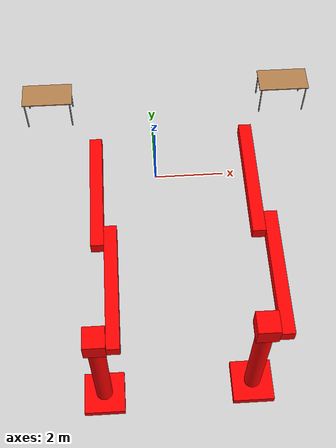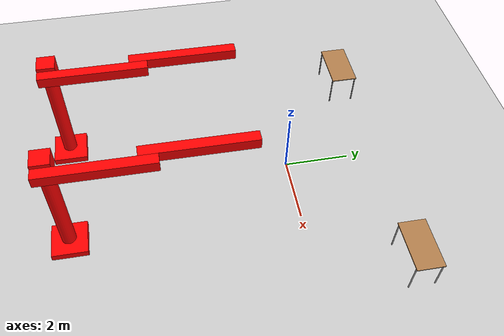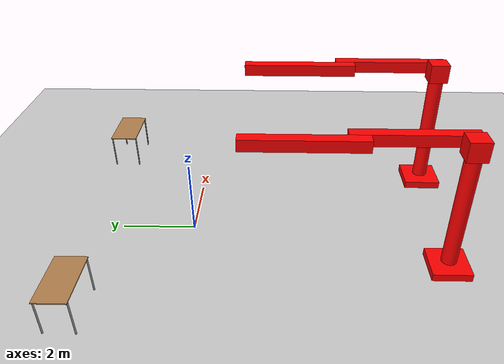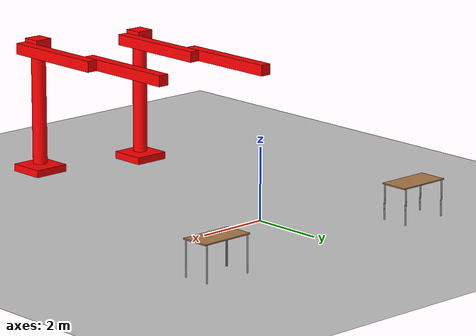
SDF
<sdf version="1.6">
 <world name="default">
  <model name="ground_plane">
   <static>1</static>
   <link name="link">
    <collision name="collision">
     <geometry><plane><normal>0 0 1</normal><size>100 100</size></plane></geometry>
     <surface><friction><ode><mu>100</mu><mu2>50</mu2></ode></friction></surface>
    </collision>
    <visual name="visual">
     <cast_shadows>0</cast_shadows>
     <geometry><plane><normal>0 0 1</normal><size>100 100</size></plane></geometry>
     <material>
      <script><uri>file://media/materials/scripts/gazebo.material</uri><name>Gazebo/Grey</name></script>
     </material>
    </visual>
   </link>
  </model>
  <model name="3dofarm">
   <link name="link_0">
    <pose>-0.27214 0.347509 -1.9245 0 -0 0</pose>
    <inertial>
     <mass>1</mass>
     <inertia>
      <ixx>0.166667</ixx>
      <ixy>0</ixy>
      <ixz>0</ixz>
      <iyy>0.166667</iyy>
      <iyz>0</iyz>
      <izz>0.166667</izz>
     </inertia>
    </inertial>
    <visual name="visual">
     <geometry><box><size>1 1 0.2</size></box></geometry>
     <material>
      <lighting>1</lighting>
      <script><uri>file://media/materials/scripts/gazebo.material</uri><name>Gazebo/Grey</name></script>
      <shader type="pixel"><normal_map>__default__</normal_map></shader>
      <ambient>1 0 0 1</ambient>
      <diffuse>0.7 0.7 0.7 1</diffuse>
      <specular>0.01 0.01 0.01 1</specular>
      <emissive>0 0 0 1</emissive>
     </material>
    </visual>
    <collision name="collision">
     <geometry><box><size>1 1 0.2</size></box></geometry>
     <surface>
      <friction>
       <ode><mu>1</mu><mu2>1</mu2><fdir1>0 0 0</fdir1><slip1>0</slip1><slip2>0</slip2></ode>
       <torsional>
        <coefficient>1</coefficient>
        <patch_radius>0</patch_radius>
        <surface_radius>0</surface_radius>
        <use_patch_radius>1</use_patch_radius>
        <ode><slip>0</slip></ode>
       </torsional>
      </friction>
      <bounce><restitution_coefficient>0</restitution_coefficient><threshold>1e+06</threshold></bounce>
      <contact>
       <collide_without_contact>0</collide_without_contact>
       <collide_without_contact_bitmask>1</collide_without_contact_bitmask>
       <collide_bitmask>1</collide_bitmask>
       <ode>
        <soft_cfm>0</soft_cfm>
        <soft_erp>0.2</soft_erp>
        <kp>1e+13</kp>
        <kd>1</kd>
        <max_vel>0.01</max_vel>
        <min_depth>0</min_depth>
       </ode>
       <bullet>
        <split_impulse>1</split_impulse>
        <split_impulse_penetration_threshold>-0.01</split_impulse_penetration_threshold>
        <soft_cfm>0</soft_cfm>
        <soft_erp>0.2</soft_erp>
        <kp>1e+13</kp>
        <kd>1</kd>
       </bullet>
      </contact>
     </surface>
    </collision>
   </link>
   <link name="link_1">
    <pose>-0.272137 0.347508 -0.2845 0 -0 0</pose>
    <inertial>
     <mass>1</mass>
     <inertia><ixx>0.145833</ixx><ixy>0</ixy><ixz>0</ixz><iyy>0.145833</iyy><iyz>0</iyz><izz>0.125</izz></inertia>
    </inertial>
    <visual name="visual">
     <geometry><cylinder><radius>0.2</radius><length>3</length></cylinder></geometry>
     <material>
      <lighting>1</lighting>
      <script><uri>file://media/materials/scripts/gazebo.material</uri><name>Gazebo/Grey</name></script>
      <shader type="pixel"><normal_map>__default__</normal_map></shader>
      <ambient>1 0 0 1</ambient>
      <diffuse>0.7 0.7 0.7 1</diffuse>
      <specular>0.01 0.01 0.01 1</specular>
      <emissive>0 0 0 1</emissive>
     </material>
    </visual>
    <collision name="collision">
     <geometry><cylinder><radius>0.2</radius><length>3</length></cylinder></geometry>
     <surface>
      <friction>
       <ode><mu>1</mu><mu2>1</mu2><fdir1>0 0 0</fdir1><slip1>0</slip1><slip2>0</slip2></ode>
       <torsional>
        <coefficient>1</coefficient>
        <patch_radius>0</patch_radius>
        <surface_radius>0</surface_radius>
        <use_patch_radius>1</use_patch_radius>
        <ode><slip>0</slip></ode>
       </torsional>
      </friction>
      <bounce><restitution_coefficient>0</restitution_coefficient><threshold>1e+06</threshold></bounce>
      <contact>
       <collide_without_contact>0</collide_without_contact>
       <collide_without_contact_bitmask>1</collide_without_contact_bitmask>
       <collide_bitmask>1</collide_bitmask>
       <ode>
        <soft_cfm>0</soft_cfm>
        <soft_erp>0.2</soft_erp>
        <kp>1e+13</kp>
        <kd>1</kd>
        <max_vel>0.01</max_vel>
        <min_depth>0</min_depth>
       </ode>
       <bullet>
        <split_impulse>1</split_impulse>
        <split_impulse_penetration_threshold>-0.01</split_impulse_penetration_threshold>
        <soft_cfm>0</soft_cfm>
        <soft_erp>0.2</soft_erp>
        <kp>1e+13</kp>
        <kd>1</kd>
       </bullet>
      </contact>
     </surface>
    </collision>
   </link>
   <link name="link_2">
    <pose>-0.272137 0.347508 1.4655 0 -0 0</pose>
    <inertial>
     <mass>1</mass>
     <inertia>
      <ixx>0.166667</ixx>
      <ixy>0</ixy>
      <ixz>0</ixz>
      <iyy>0.166667</iyy>
      <iyz>0</iyz>
      <izz>0.166667</izz>
     </inertia>
    </inertial>
    <visual name="visual">
     <geometry><box><size>0.5 0.5 0.5</size></box></geometry>
     <material>
      <lighting>1</lighting>
      <script><uri>file://media/materials/scripts/gazebo.material</uri><name>Gazebo/Grey</name></script>
      <shader type="pixel"><normal_map>__default__</normal_map></shader>
      <ambient>1 0 0 1</ambient>
      <diffuse>0.7 0.7 0.7 1</diffuse>
      <specular>0.01 0.01 0.01 1</specular>
      <emissive>0 0 0 1</emissive>
     </material>
    </visual>
    <collision name="collision">
     <geometry><box><size>0.5 0.5 0.5</size></box></geometry>
     <surface>
      <friction>
       <ode><mu>1</mu><mu2>1</mu2><fdir1>0 0 0</fdir1><slip1>0</slip1><slip2>0</slip2></ode>
       <torsional>
        <coefficient>1</coefficient>
        <patch_radius>0</patch_radius>
        <surface_radius>0</surface_radius>
        <use_patch_radius>1</use_patch_radius>
        <ode><slip>0</slip></ode>
       </torsional>
      </friction>
      <bounce><restitution_coefficient>0</restitution_coefficient><threshold>1e+06</threshold></bounce>
      <contact>
       <collide_without_contact>0</collide_without_contact>
       <collide_without_contact_bitmask>1</collide_without_contact_bitmask>
       <collide_bitmask>1</collide_bitmask>
       <ode>
        <soft_cfm>0</soft_cfm>
        <soft_erp>0.2</soft_erp>
        <kp>1e+13</kp>
        <kd>1</kd>
        <max_vel>0.01</max_vel>
        <min_depth>0</min_depth>
       </ode>
       <bullet>
        <split_impulse>1</split_impulse>
        <split_impulse_penetration_threshold>-0.01</split_impulse_penetration_threshold>
        <soft_cfm>0</soft_cfm>
        <soft_erp>0.2</soft_erp>
        <kp>1e+13</kp>
        <kd>1</kd>
       </bullet>
      </contact>
     </surface>
    </collision>
   </link>
   <link name="link_3">
    <pose>0.127862 0.347503 1.4655 0 -0 0</pose>
    <inertial>
     <mass>1</mass>
     <inertia>
      <ixx>0.166667</ixx>
      <ixy>0</ixy>
      <ixz>0</ixz>
      <iyy>0.166667</iyy>
      <iyz>0</iyz>
      <izz>0.166667</izz>
     </inertia>
    </inertial>
    <visual name="visual">
     <pose>0 1.25 0 0 -0 0</pose>
     <geometry><box><size>0.3 3 0.3</size></box></geometry>
     <material>
      <lighting>1</lighting>
      <script><uri>file://media/materials/scripts/gazebo.material</uri><name>Gazebo/Grey</name></script>
      <shader type="pixel"><normal_map>__default__</normal_map></shader>
      <ambient>1 0 0 1</ambient>
      <diffuse>0.7 0.7 0.7 1</diffuse>
      <specular>0.01 0.01 0.01 1</specular>
      <emissive>0 0 0 1</emissive>
     </material>
    </visual>
    <collision name="collision">
     <pose>0 1.25 0 0 -0 0</pose>
     <geometry><box><size>0.3 3 0.3</size></box></geometry>
     <surface>
      <friction>
       <ode><mu>1</mu><mu2>1</mu2><fdir1>0 0 0</fdir1><slip1>0</slip1><slip2>0</slip2></ode>
       <torsional>
        <coefficient>1</coefficient>
        <patch_radius>0</patch_radius>
        <surface_radius>0</surface_radius>
        <use_patch_radius>1</use_patch_radius>
        <ode><slip>0</slip></ode>
       </torsional>
      </friction>
      <bounce><restitution_coefficient>0</restitution_coefficient><threshold>1e+06</threshold></bounce>
      <contact>
       <collide_without_contact>0</collide_without_contact>
       <collide_without_contact_bitmask>1</collide_without_contact_bitmask>
       <collide_bitmask>1</collide_bitmask>
       <ode>
        <soft_cfm>0</soft_cfm>
        <soft_erp>0.2</soft_erp>
        <kp>1e+13</kp>
        <kd>1</kd>
        <max_vel>0.01</max_vel>
        <min_depth>0</min_depth>
       </ode>
       <bullet>
        <split_impulse>1</split_impulse>
        <split_impulse_penetration_threshold>-0.01</split_impulse_penetration_threshold>
        <soft_cfm>0</soft_cfm>
        <soft_erp>0.2</soft_erp>
        <kp>1e+13</kp>
        <kd>1</kd>
       </bullet>
      </contact>
     </surface>
    </collision>
   </link>
   <link name="link_3_clone">
    <pose>-0.172137 2.84751 1.4655 0 -0 0</pose>
    <inertial>
     <mass>1</mass>
     <inertia>
      <ixx>0.166667</ixx>
      <ixy>0</ixy>
      <ixz>0</ixz>
      <iyy>0.166667</iyy>
      <iyz>0</iyz>
      <izz>0.166667</izz>
     </inertia>
    </inertial>
    <visual name="visual">
     <pose>0 1.25 0 0 -0 0</pose>
     <geometry><box><size>0.3 3 0.3</size></box></geometry>
     <material>
      <lighting>1</lighting>
      <script><uri>file://media/materials/scripts/gazebo.material</uri><name>Gazebo/Grey</name></script>
      <shader type="pixel"><normal_map>__default__</normal_map></shader>
      <ambient>1 0 0 1</ambient>
      <diffuse>0.7 0.7 0.7 1</diffuse>
      <specular>0.01 0.01 0.01 1</specular>
      <emissive>0 0 0 1</emissive>
     </material>
    </visual>
    <collision name="collision">
     <pose>0 1.25 0 0 -0 0</pose>
     <geometry><box><size>0.3 3 0.3</size></box></geometry>
     <surface>
      <friction>
       <ode><mu>1</mu><mu2>1</mu2><fdir1>0 0 0</fdir1><slip1>0</slip1><slip2>0</slip2></ode>
       <torsional>
        <coefficient>1</coefficient>
        <patch_radius>0</patch_radius>
        <surface_radius>0</surface_radius>
        <use_patch_radius>1</use_patch_radius>
        <ode><slip>0</slip></ode>
       </torsional>
      </friction>
      <bounce><restitution_coefficient>0</restitution_coefficient><threshold>1e+06</threshold></bounce>
      <contact>
       <collide_without_contact>0</collide_without_contact>
       <collide_without_contact_bitmask>1</collide_without_contact_bitmask>
       <collide_bitmask>1</collide_bitmask>
       <ode>
        <soft_cfm>0</soft_cfm>
        <soft_erp>0.2</soft_erp>
        <kp>1e+13</kp>
        <kd>1</kd>
        <max_vel>0.01</max_vel>
        <min_depth>0</min_depth>
       </ode>
       <bullet>
        <split_impulse>1</split_impulse>
        <split_impulse_penetration_threshold>-0.01</split_impulse_penetration_threshold>
        <soft_cfm>0</soft_cfm>
        <soft_erp>0.2</soft_erp>
        <kp>1e+13</kp>
        <kd>1</kd>
       </bullet>
      </contact>
     </surface>
    </collision>
   </link>
   <joint name="link_0_JOINT_0" type="revolute">
    <parent>link_0</parent>
    <child>link_1</child>
    <pose>0 0 0 0 -0.01 0</pose>
    <axis>
     <xyz>0 0 1</xyz>
     <use_parent_model_frame>0</use_parent_model_frame>
     <limit>
      <lower>-1.79769e+308</lower>
      <upper>1.79769e+308</upper>
      <effort>-1</effort>
      <velocity>-1</velocity>
     </limit>
     <dynamics>
      <spring_reference>0</spring_reference>
      <spring_stiffness>0</spring_stiffness>
      <damping>0</damping>
      <friction>0</friction>
     </dynamics>
    </axis>
    <physics>
     <ode><limit><cfm>0</cfm><erp>0.2</erp></limit><suspension><cfm>0</cfm><erp>0.2</erp></suspension></ode>
    </physics>
   </joint>
   <joint name="link_1_JOINT_1" type="fixed">
    <parent>link_1</parent>
    <child>link_2</child>
    <physics>
     <ode><limit><cfm>0</cfm><erp>0.2</erp></limit><suspension><cfm>0</cfm><erp>0.2</erp></suspension></ode>
    </physics>
   </joint>
   <joint name="link_2_JOINT_2" type="revolute">
    <parent>link_2</parent>
    <child>link_3</child>
    <axis>
     <xyz>1 0 0</xyz>
     <use_parent_model_frame>0</use_parent_model_frame>
     <limit>
      <lower>-1.79769e+308</lower>
      <upper>1.79769e+308</upper>
      <effort>-1</effort>
      <velocity>-1</velocity>
     </limit>
     <dynamics>
      <spring_reference>0</spring_reference>
      <spring_stiffness>0</spring_stiffness>
      <damping>0</damping>
      <friction>0</friction>
     </dynamics>
    </axis>
    <physics>
     <ode><limit><cfm>0</cfm><erp>0.2</erp></limit><suspension><cfm>0</cfm><erp>0.2</erp></suspension></ode>
    </physics>
   </joint>
   <joint name="link_3_JOINT_6" type="revolute">
    <parent>link_3</parent>
    <child>link_3_clone</child>
    <axis>
     <xyz>1 0 0</xyz>
     <use_parent_model_frame>0</use_parent_model_frame>
     <limit>
      <lower>-1.79769e+308</lower>
      <upper>1.79769e+308</upper>
      <effort>-1</effort>
      <velocity>-1</velocity>
     </limit>
     <dynamics>
      <spring_reference>0</spring_reference>
      <spring_stiffness>0</spring_stiffness>
      <damping>0</damping>
      <friction>0</friction>
     </dynamics>
    </axis>
    <physics>
     <ode><limit><cfm>0</cfm><erp>0.2</erp></limit><suspension><cfm>0</cfm><erp>0.2</erp></suspension></ode>
    </physics>
   </joint>
   <static>1</static>
   <pose>-1.3357 -6.99832 2.13578 0 -0 0</pose>
  </model>
  <model name="3dofarm_0">
   <link name="link_0">
    <pose>-0.27214 0.347509 -1.9245 0 -0 0</pose>
    <inertial>
     <mass>1</mass>
     <inertia>
      <ixx>0.166667</ixx>
      <ixy>0</ixy>
      <ixz>0</ixz>
      <iyy>0.166667</iyy>
      <iyz>0</iyz>
      <izz>0.166667</izz>
     </inertia>
    </inertial>
    <visual name="visual">
     <geometry><box><size>1 1 0.2</size></box></geometry>
     <material>
      <lighting>1</lighting>
      <script><uri>file://media/materials/scripts/gazebo.material</uri><name>Gazebo/Grey</name></script>
      <shader type="pixel"><normal_map>__default__</normal_map></shader>
      <ambient>1 0 0 1</ambient>
      <diffuse>0.7 0.7 0.7 1</diffuse>
      <specular>0.01 0.01 0.01 1</specular>
      <emissive>0 0 0 1</emissive>
     </material>
    </visual>
    <collision name="collision">
     <geometry><box><size>1 1 0.2</size></box></geometry>
     <surface>
      <friction>
       <ode><mu>1</mu><mu2>1</mu2><fdir1>0 0 0</fdir1><slip1>0</slip1><slip2>0</slip2></ode>
       <torsional>
        <coefficient>1</coefficient>
        <patch_radius>0</patch_radius>
        <surface_radius>0</surface_radius>
        <use_patch_radius>1</use_patch_radius>
        <ode><slip>0</slip></ode>
       </torsional>
      </friction>
      <bounce><restitution_coefficient>0</restitution_coefficient><threshold>1e+06</threshold></bounce>
      <contact>
       <collide_without_contact>0</collide_without_contact>
       <collide_without_contact_bitmask>1</collide_without_contact_bitmask>
       <collide_bitmask>1</collide_bitmask>
       <ode>
        <soft_cfm>0</soft_cfm>
        <soft_erp>0.2</soft_erp>
        <kp>1e+13</kp>
        <kd>1</kd>
        <max_vel>0.01</max_vel>
        <min_depth>0</min_depth>
       </ode>
       <bullet>
        <split_impulse>1</split_impulse>
        <split_impulse_penetration_threshold>-0.01</split_impulse_penetration_threshold>
        <soft_cfm>0</soft_cfm>
        <soft_erp>0.2</soft_erp>
        <kp>1e+13</kp>
        <kd>1</kd>
       </bullet>
      </contact>
     </surface>
    </collision>
   </link>
   <link name="link_1">
    <pose>-0.272137 0.347508 -0.2845 0 -0 0</pose>
    <inertial>
     <mass>1</mass>
     <inertia><ixx>0.145833</ixx><ixy>0</ixy><ixz>0</ixz><iyy>0.145833</iyy><iyz>0</iyz><izz>0.125</izz></inertia>
    </inertial>
    <visual name="visual">
     <geometry><cylinder><radius>0.2</radius><length>3</length></cylinder></geometry>
     <material>
      <lighting>1</lighting>
      <script><uri>file://media/materials/scripts/gazebo.material</uri><name>Gazebo/Grey</name></script>
      <shader type="pixel"><normal_map>__default__</normal_map></shader>
      <ambient>1 0 0 1</ambient>
      <diffuse>0.7 0.7 0.7 1</diffuse>
      <specular>0.01 0.01 0.01 1</specular>
      <emissive>0 0 0 1</emissive>
     </material>
    </visual>
    <collision name="collision">
     <geometry><cylinder><radius>0.2</radius><length>3</length></cylinder></geometry>
     <surface>
      <friction>
       <ode><mu>1</mu><mu2>1</mu2><fdir1>0 0 0</fdir1><slip1>0</slip1><slip2>0</slip2></ode>
       <torsional>
        <coefficient>1</coefficient>
        <patch_radius>0</patch_radius>
        <surface_radius>0</surface_radius>
        <use_patch_radius>1</use_patch_radius>
        <ode><slip>0</slip></ode>
       </torsional>
      </friction>
      <bounce><restitution_coefficient>0</restitution_coefficient><threshold>1e+06</threshold></bounce>
      <contact>
       <collide_without_contact>0</collide_without_contact>
       <collide_without_contact_bitmask>1</collide_without_contact_bitmask>
       <collide_bitmask>1</collide_bitmask>
       <ode>
        <soft_cfm>0</soft_cfm>
        <soft_erp>0.2</soft_erp>
        <kp>1e+13</kp>
        <kd>1</kd>
        <max_vel>0.01</max_vel>
        <min_depth>0</min_depth>
       </ode>
       <bullet>
        <split_impulse>1</split_impulse>
        <split_impulse_penetration_threshold>-0.01</split_impulse_penetration_threshold>
        <soft_cfm>0</soft_cfm>
        <soft_erp>0.2</soft_erp>
        <kp>1e+13</kp>
        <kd>1</kd>
       </bullet>
      </contact>
     </surface>
    </collision>
   </link>
   <link name="link_2">
    <pose>-0.272137 0.347508 1.4655 0 -0 0</pose>
    <inertial>
     <mass>1</mass>
     <inertia>
      <ixx>0.166667</ixx>
      <ixy>0</ixy>
      <ixz>0</ixz>
      <iyy>0.166667</iyy>
      <iyz>0</iyz>
      <izz>0.166667</izz>
     </inertia>
    </inertial>
    <visual name="visual">
     <geometry><box><size>0.5 0.5 0.5</size></box></geometry>
     <material>
      <lighting>1</lighting>
      <script><uri>file://media/materials/scripts/gazebo.material</uri><name>Gazebo/Grey</name></script>
      <shader type="pixel"><normal_map>__default__</normal_map></shader>
      <ambient>1 0 0 1</ambient>
      <diffuse>0.7 0.7 0.7 1</diffuse>
      <specular>0.01 0.01 0.01 1</specular>
      <emissive>0 0 0 1</emissive>
     </material>
    </visual>
    <collision name="collision">
     <geometry><box><size>0.5 0.5 0.5</size></box></geometry>
     <surface>
      <friction>
       <ode><mu>1</mu><mu2>1</mu2><fdir1>0 0 0</fdir1><slip1>0</slip1><slip2>0</slip2></ode>
       <torsional>
        <coefficient>1</coefficient>
        <patch_radius>0</patch_radius>
        <surface_radius>0</surface_radius>
        <use_patch_radius>1</use_patch_radius>
        <ode><slip>0</slip></ode>
       </torsional>
      </friction>
      <bounce><restitution_coefficient>0</restitution_coefficient><threshold>1e+06</threshold></bounce>
      <contact>
       <collide_without_contact>0</collide_without_contact>
       <collide_without_contact_bitmask>1</collide_without_contact_bitmask>
       <collide_bitmask>1</collide_bitmask>
       <ode>
        <soft_cfm>0</soft_cfm>
        <soft_erp>0.2</soft_erp>
        <kp>1e+13</kp>
        <kd>1</kd>
        <max_vel>0.01</max_vel>
        <min_depth>0</min_depth>
       </ode>
       <bullet>
        <split_impulse>1</split_impulse>
        <split_impulse_penetration_threshold>-0.01</split_impulse_penetration_threshold>
        <soft_cfm>0</soft_cfm>
        <soft_erp>0.2</soft_erp>
        <kp>1e+13</kp>
        <kd>1</kd>
       </bullet>
      </contact>
     </surface>
    </collision>
   </link>
   <link name="link_3">
    <pose>0.127862 0.347503 1.4655 0 -0 0</pose>
    <inertial>
     <mass>1</mass>
     <inertia>
      <ixx>0.166667</ixx>
      <ixy>0</ixy>
      <ixz>0</ixz>
      <iyy>0.166667</iyy>
      <iyz>0</iyz>
      <izz>0.166667</izz>
     </inertia>
    </inertial>
    <visual name="visual">
     <pose>0 1.25 0 0 -0 0</pose>
     <geometry><box><size>0.3 3 0.3</size></box></geometry>
     <material>
      <lighting>1</lighting>
      <script><uri>file://media/materials/scripts/gazebo.material</uri><name>Gazebo/Grey</name></script>
      <shader type="pixel"><normal_map>__default__</normal_map></shader>
      <ambient>1 0 0 1</ambient>
      <diffuse>0.7 0.7 0.7 1</diffuse>
      <specular>0.01 0.01 0.01 1</specular>
      <emissive>0 0 0 1</emissive>
     </material>
    </visual>
    <collision name="collision">
     <pose>0 1.25 0 0 -0 0</pose>
     <geometry><box><size>0.3 3 0.3</size></box></geometry>
     <surface>
      <friction>
       <ode><mu>1</mu><mu2>1</mu2><fdir1>0 0 0</fdir1><slip1>0</slip1><slip2>0</slip2></ode>
       <torsional>
        <coefficient>1</coefficient>
        <patch_radius>0</patch_radius>
        <surface_radius>0</surface_radius>
        <use_patch_radius>1</use_patch_radius>
        <ode><slip>0</slip></ode>
       </torsional>
      </friction>
      <bounce><restitution_coefficient>0</restitution_coefficient><threshold>1e+06</threshold></bounce>
      <contact>
       <collide_without_contact>0</collide_without_contact>
       <collide_without_contact_bitmask>1</collide_without_contact_bitmask>
       <collide_bitmask>1</collide_bitmask>
       <ode>
        <soft_cfm>0</soft_cfm>
        <soft_erp>0.2</soft_erp>
        <kp>1e+13</kp>
        <kd>1</kd>
        <max_vel>0.01</max_vel>
        <min_depth>0</min_depth>
       </ode>
       <bullet>
        <split_impulse>1</split_impulse>
        <split_impulse_penetration_threshold>-0.01</split_impulse_penetration_threshold>
        <soft_cfm>0</soft_cfm>
        <soft_erp>0.2</soft_erp>
        <kp>1e+13</kp>
        <kd>1</kd>
       </bullet>
      </contact>
     </surface>
    </collision>
   </link>
   <link name="link_3_clone">
    <pose>-0.172137 2.84751 1.4655 0 -0 0</pose>
    <inertial>
     <mass>1</mass>
     <inertia>
      <ixx>0.166667</ixx>
      <ixy>0</ixy>
      <ixz>0</ixz>
      <iyy>0.166667</iyy>
      <iyz>0</iyz>
      <izz>0.166667</izz>
     </inertia>
    </inertial>
    <visual name="visual">
     <pose>0 1.25 0 0 -0 0</pose>
     <geometry><box><size>0.3 3 0.3</size></box></geometry>
     <material>
      <lighting>1</lighting>
      <script><uri>file://media/materials/scripts/gazebo.material</uri><name>Gazebo/Grey</name></script>
      <shader type="pixel"><normal_map>__default__</normal_map></shader>
      <ambient>1 0 0 1</ambient>
      <diffuse>0.7 0.7 0.7 1</diffuse>
      <specular>0.01 0.01 0.01 1</specular>
      <emissive>0 0 0 1</emissive>
     </material>
    </visual>
    <collision name="collision">
     <pose>0 1.25 0 0 -0 0</pose>
     <geometry><box><size>0.3 3 0.3</size></box></geometry>
     <surface>
      <friction>
       <ode><mu>1</mu><mu2>1</mu2><fdir1>0 0 0</fdir1><slip1>0</slip1><slip2>0</slip2></ode>
       <torsional>
        <coefficient>1</coefficient>
        <patch_radius>0</patch_radius>
        <surface_radius>0</surface_radius>
        <use_patch_radius>1</use_patch_radius>
        <ode><slip>0</slip></ode>
       </torsional>
      </friction>
      <bounce><restitution_coefficient>0</restitution_coefficient><threshold>1e+06</threshold></bounce>
      <contact>
       <collide_without_contact>0</collide_without_contact>
       <collide_without_contact_bitmask>1</collide_without_contact_bitmask>
       <collide_bitmask>1</collide_bitmask>
       <ode>
        <soft_cfm>0</soft_cfm>
        <soft_erp>0.2</soft_erp>
        <kp>1e+13</kp>
        <kd>1</kd>
        <max_vel>0.01</max_vel>
        <min_depth>0</min_depth>
       </ode>
       <bullet>
        <split_impulse>1</split_impulse>
        <split_impulse_penetration_threshold>-0.01</split_impulse_penetration_threshold>
        <soft_cfm>0</soft_cfm>
        <soft_erp>0.2</soft_erp>
        <kp>1e+13</kp>
        <kd>1</kd>
       </bullet>
      </contact>
     </surface>
    </collision>
   </link>
   <joint name="link_0_JOINT_0" type="revolute">
    <parent>link_0</parent>
    <child>link_1</child>
    <pose>0 0 0 0 -0.01 0</pose>
    <axis>
     <xyz>0 0 1</xyz>
     <use_parent_model_frame>0</use_parent_model_frame>
     <limit>
      <lower>-1.79769e+308</lower>
      <upper>1.79769e+308</upper>
      <effort>-1</effort>
      <velocity>-1</velocity>
     </limit>
     <dynamics>
      <spring_reference>0</spring_reference>
      <spring_stiffness>0</spring_stiffness>
      <damping>0</damping>
      <friction>0</friction>
     </dynamics>
    </axis>
    <physics>
     <ode><limit><cfm>0</cfm><erp>0.2</erp></limit><suspension><cfm>0</cfm><erp>0.2</erp></suspension></ode>
    </physics>
   </joint>
   <joint name="link_1_JOINT_1" type="fixed">
    <parent>link_1</parent>
    <child>link_2</child>
    <physics>
     <ode><limit><cfm>0</cfm><erp>0.2</erp></limit><suspension><cfm>0</cfm><erp>0.2</erp></suspension></ode>
    </physics>
   </joint>
   <joint name="link_2_JOINT_2" type="revolute">
    <parent>link_2</parent>
    <child>link_3</child>
    <axis>
     <xyz>1 0 0</xyz>
     <use_parent_model_frame>0</use_parent_model_frame>
     <limit>
      <lower>-1.79769e+308</lower>
      <upper>1.79769e+308</upper>
      <effort>-1</effort>
      <velocity>-1</velocity>
     </limit>
     <dynamics>
      <spring_reference>0</spring_reference>
      <spring_stiffness>0</spring_stiffness>
      <damping>0</damping>
      <friction>0</friction>
     </dynamics>
    </axis>
    <physics>
     <ode><limit><cfm>0</cfm><erp>0.2</erp></limit><suspension><cfm>0</cfm><erp>0.2</erp></suspension></ode>
    </physics>
   </joint>
   <joint name="link_3_JOINT_6" type="revolute">
    <parent>link_3</parent>
    <child>link_3_clone</child>
    <axis>
     <xyz>1 0 0</xyz>
     <use_parent_model_frame>0</use_parent_model_frame>
     <limit>
      <lower>-1.79769e+308</lower>
      <upper>1.79769e+308</upper>
      <effort>-1</effort>
      <velocity>-1</velocity>
     </limit>
     <dynamics>
      <spring_reference>0</spring_reference>
      <spring_stiffness>0</spring_stiffness>
      <damping>0</damping>
      <friction>0</friction>
     </dynamics>
    </axis>
    <physics>
     <ode><limit><cfm>0</cfm><erp>0.2</erp></limit><suspension><cfm>0</cfm><erp>0.2</erp></suspension></ode>
    </physics>
   </joint>
   <static>1</static>
   <pose>2.31322 -6.99106 2.43771 0 -0 0</pose>
  </model>
  <model name="table">
   <static>1</static>
   <link name="link">
    <collision name="surface">
     <pose>0 0 1 0 -0 0</pose>
     <geometry><box><size>1.5 0.8 0.03</size></box></geometry>
     <surface><friction><ode><mu>0.6</mu><mu2>0.6</mu2></ode></friction></surface>
    </collision>
    <visual name="visual1">
     <pose>0 0 1 0 -0 0</pose>
     <geometry><box><size>1.5 0.8 0.03</size></box></geometry>
     <material>
      <script><uri>file://media/materials/scripts/gazebo.material</uri><name>Gazebo/Wood</name></script>
     </material>
    </visual>
    <collision name="front_left_leg">
     <pose>0.68 0.38 0.5 0 -0 0</pose>
     <geometry><cylinder><radius>0.02</radius><length>1</length></cylinder></geometry>
    </collision>
    <visual name="front_left_leg">
     <pose>0.68 0.38 0.5 0 -0 0</pose>
     <geometry><cylinder><radius>0.02</radius><length>1</length></cylinder></geometry>
     <material>
      <script><uri>file://media/materials/scripts/gazebo.material</uri><name>Gazebo/Grey</name></script>
     </material>
    </visual>
    <collision name="front_right_leg">
     <pose>0.68 -0.38 0.5 0 -0 0</pose>
     <geometry><cylinder><radius>0.02</radius><length>1</length></cylinder></geometry>
    </collision>
    <visual name="front_right_leg">
     <pose>0.68 -0.38 0.5 0 -0 0</pose>
     <geometry><cylinder><radius>0.02</radius><length>1</length></cylinder></geometry>
     <material>
      <script><uri>file://media/materials/scripts/gazebo.material</uri><name>Gazebo/Grey</name></script>
     </material>
    </visual>
    <collision name="back_right_leg">
     <pose>-0.68 -0.38 0.5 0 -0 0</pose>
     <geometry><cylinder><radius>0.02</radius><length>1</length></cylinder></geometry>
    </collision>
    <visual name="back_right_leg">
     <pose>-0.68 -0.38 0.5 0 -0 0</pose>
     <geometry><cylinder><radius>0.02</radius><length>1</length></cylinder></geometry>
     <material>
      <script><uri>file://media/materials/scripts/gazebo.material</uri><name>Gazebo/Grey</name></script>
     </material>
    </visual>
    <collision name="back_left_leg">
     <pose>-0.68 0.38 0.5 0 -0 0</pose>
     <geometry><cylinder><radius>0.02</radius><length>1</length></cylinder></geometry>
    </collision>
    <visual name="back_left_leg">
     <pose>-0.68 0.38 0.5 0 -0 0</pose>
     <geometry><cylinder><radius>0.02</radius><length>1</length></cylinder></geometry>
     <material>
      <script><uri>file://media/materials/scripts/gazebo.material</uri><name>Gazebo/Grey</name></script>
     </material>
    </visual>
   </link>
   <pose>4.06189 2.71611 0 0 -0 0</pose>
  </model>
  <model name="table_1">
   <static>1</static>
   <link name="link">
    <collision name="surface">
     <pose>0 0 1 0 -0 0</pose>
     <geometry><box><size>1.5 0.8 0.03</size></box></geometry>
     <surface><friction><ode><mu>0.6</mu><mu2>0.6</mu2></ode></friction></surface>
    </collision>
    <visual name="visual1">
     <pose>0 0 1 0 -0 0</pose>
     <geometry><box><size>1.5 0.8 0.03</size></box></geometry>
     <material>
      <script><uri>file://media/materials/scripts/gazebo.material</uri><name>Gazebo/Wood</name></script>
     </material>
    </visual>
    <collision name="front_left_leg">
     <pose>0.68 0.38 0.5 0 -0 0</pose>
     <geometry><cylinder><radius>0.02</radius><length>1</length></cylinder></geometry>
    </collision>
    <visual name="front_left_leg">
     <pose>0.68 0.38 0.5 0 -0 0</pose>
     <geometry><cylinder><radius>0.02</radius><length>1</length></cylinder></geometry>
     <material>
      <script><uri>file://media/materials/scripts/gazebo.material</uri><name>Gazebo/Grey</name></script>
     </material>
    </visual>
    <collision name="front_right_leg">
     <pose>0.68 -0.38 0.5 0 -0 0</pose>
     <geometry><cylinder><radius>0.02</radius><length>1</length></cylinder></geometry>
    </collision>
    <visual name="front_right_leg">
     <pose>0.68 -0.38 0.5 0 -0 0</pose>
     <geometry><cylinder><radius>0.02</radius><length>1</length></cylinder></geometry>
     <material>
      <script><uri>file://media/materials/scripts/gazebo.material</uri><name>Gazebo/Grey</name></script>
     </material>
    </visual>
    <collision name="back_right_leg">
     <pose>-0.68 -0.38 0.5 0 -0 0</pose>
     <geometry><cylinder><radius>0.02</radius><length>1</length></cylinder></geometry>
    </collision>
    <visual name="back_right_leg">
     <pose>-0.68 -0.38 0.5 0 -0 0</pose>
     <geometry><cylinder><radius>0.02</radius><length>1</length></cylinder></geometry>
     <material>
      <script><uri>file://media/materials/scripts/gazebo.material</uri><name>Gazebo/Grey</name></script>
     </material>
    </visual>
    <collision name="back_left_leg">
     <pose>-0.68 0.38 0.5 0 -0 0</pose>
     <geometry><cylinder><radius>0.02</radius><length>1</length></cylinder></geometry>
    </collision>
    <visual name="back_left_leg">
     <pose>-0.68 0.38 0.5 0 -0 0</pose>
     <geometry><cylinder><radius>0.02</radius><length>1</length></cylinder></geometry>
     <material>
      <script><uri>file://media/materials/scripts/gazebo.material</uri><name>Gazebo/Grey</name></script>
     </material>
    </visual>
   </link>
   <pose>-3.16855 2.49861 0 0 -0 0</pose>
  </model>
 </world>
</sdf>
